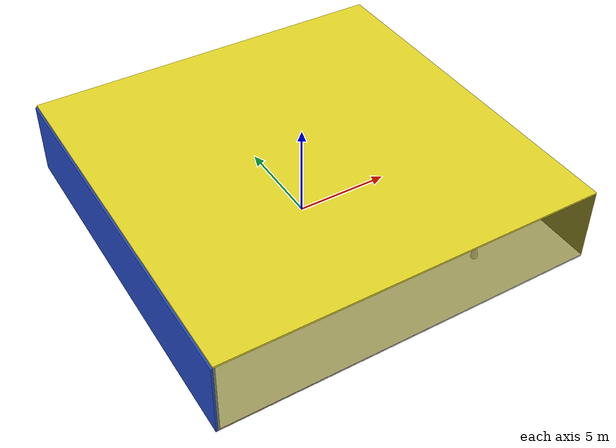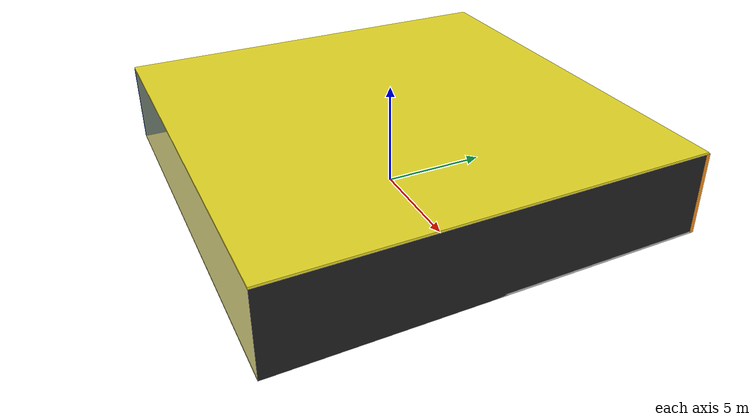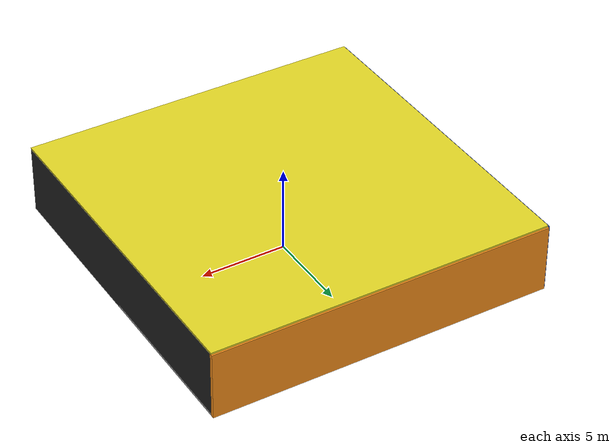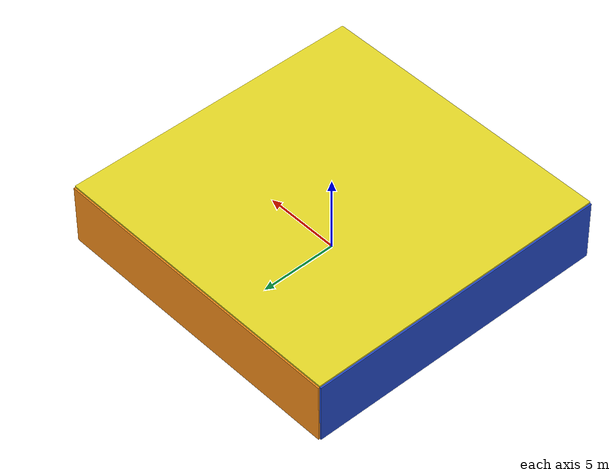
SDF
<sdf version="1.4">
 <world name="default">
  <physics type="ode">
   <max_step_size>0.001</max_step_size>
   <real_time_factor>1</real_time_factor>
   <real_time_update_rate>1000</real_time_update_rate>
   <gravity>0 0 -9.8</gravity>
  </physics>
  <scene><ambient>0.4 0.4 0.4 1</ambient><background>0.7 0.7 0.7 1</background><shadows>1</shadows></scene>
  <model name="Surrounding">
   <static>1</static>
   <link name="Ceiling">
    <collision name="Ceiling_Collision"><geometry><box><size>20 20 0.1</size></box></geometry></collision>
    <visual name="Ceiling_Visual">
     <geometry><box><size>20 20 0.1</size></box></geometry>
     <material>
      <script><uri>file://media/materials/scripts/gazebo.material</uri><name>Gazebo/Yellow</name></script>
     </material>
    </visual>
    <pose>0 0 4.05 0 0 0</pose>
   </link>
   <link name="Wall_South">
    <collision name="Wall_South_Collision">
     <geometry><box><size>20 0 4</size></box></geometry>
     <pose>0 0 2 0 -0 0</pose>
    </collision>
    <visual name="Wall_South_Visual">
     <pose>0 0 2 0 -0 0</pose>
     <geometry><box><size>20 0 4</size></box></geometry>
     <material>
      <script>
       <uri>file://media/materials/scripts/gazebo.material</uri>
       <name>Gazebo/YellowTransparent</name>
      </script>
     </material>
    </visual>
    <velocity_decay><linear>0</linear><angular>0</angular></velocity_decay>
    <pose>0 -10 0 0 -0 0</pose>
   </link>
   <link name="Wall_East">
    <collision name="Wall_21_Collision">
     <geometry><box><size>20 0 4</size></box></geometry>
     <pose>0 0 2 0 -0 0</pose>
    </collision>
    <visual name="Wall_21_Visual">
     <pose>0 0 2 0 -0 0</pose>
     <geometry><box><size>20 0 4</size></box></geometry>
     <material>
      <script><uri>file://media/materials/scripts/gazebo.material</uri><name>Gazebo/Black</name></script>
     </material>
    </visual>
    <velocity_decay><linear>0</linear><angular>0</angular></velocity_decay>
    <pose>10 0 0 0 -0 1.5708</pose>
   </link>
   <link name="Wall_North">
    <collision name="Wall_22_Collision">
     <geometry><box><size>20 0.2 4</size></box></geometry>
     <pose>0 0 2 0 -0 0</pose>
    </collision>
    <visual name="Wall_22_Visual">
     <pose>0 0 2 0 -0 0</pose>
     <geometry><box><size>20 0.2 4</size></box></geometry>
     <material>
      <script><uri>file://media/materials/scripts/gazebo.material</uri><name>Gazebo/Orange</name></script>
     </material>
    </visual>
    <velocity_decay><linear>0</linear><angular>0</angular></velocity_decay>
    <pose>0 10 0 0 -0 0</pose>
   </link>
   <link name="Wall_West">
    <collision name="Wall_23_Collision">
     <geometry><box><size>20 0.2 4</size></box></geometry>
     <pose>0 0 2 0 -0 0</pose>
    </collision>
    <visual name="Wall_23_Visual">
     <pose>0 0 2 0 -0 0</pose>
     <geometry><box><size>20 0.2 4</size></box></geometry>
     <material>
      <script><uri>file://media/materials/scripts/gazebo.material</uri><name>Gazebo/Blue</name></script>
     </material>
    </visual>
    <velocity_decay><linear>0</linear><angular>0</angular></velocity_decay>
    <pose>-10 0 0 0 0 -1.5708</pose>
   </link>
   <link name="Ground_link">
    <collision name="collision">
     <pose>0 0 .05 0 -0 0</pose>
     <geometry><box><size>20 20 0.1</size></box></geometry>
    </collision>
    <visual name="visual">
     <pose>0 0 .05 0 -0 0</pose>
     <geometry><box><size>20 20 0.1</size></box></geometry>
     <material>
      <script><uri>file://media/materials/scripts/gazebo.material</uri><name>Gazebo/CloudySky</name></script>
     </material>
    </visual>
   </link>
   <static>1</static>
  </model>
  <spherical_coordinates>
   <surface_model>EARTH_WGS84</surface_model>
   <latitude_deg>0</latitude_deg>
   <longitude_deg>0</longitude_deg>
   <elevation>0</elevation>
   <heading_deg>0</heading_deg>
  </spherical_coordinates>
  <light name="lightball_0" type="diffuse">
   <diffuse>0.8 0.8 0.8 1</diffuse>
   <specular>0.2 0.2 0.2 1</specular>
   <attenuation>
    <range>100</range>
    <constant>0.7</constant>
    <linear>0.01</linear>
    <quadratic>0.001</quadratic>
   </attenuation>
   <direction>-0.5 0.1 -0.9</direction>
   <pose>-9.40176001131 -9.85163026602 3.79581729675 0 0 0</pose>
  </light>
  <light name="lightball_1" type="diffuse">
   <diffuse>0.8 0.8 0.8 1</diffuse>
   <specular>0.2 0.2 0.2 1</specular>
   <attenuation>
    <range>100</range>
    <constant>0.7</constant>
    <linear>0.01</linear>
    <quadratic>0.001</quadratic>
   </attenuation>
   <direction>-0.5 0.1 -0.9</direction>
   <pose>1.47485473504 5.02748486358 2.66639960618 0 0 0</pose>
  </light>
  <light name="lightball_2" type="diffuse">
   <diffuse>0.8 0.8 0.8 1</diffuse>
   <specular>0.2 0.2 0.2 1</specular>
   <attenuation>
    <range>100</range>
    <constant>0.7</constant>
    <linear>0.01</linear>
    <quadratic>0.001</quadratic>
   </attenuation>
   <direction>-0.5 0.1 -0.9</direction>
   <pose>-7.94621731986 0.849569939768 1.35959333486 0 0 0</pose>
  </light>
  <include>
   <uri>model://robocup_3Dsim_goal</uri>
   <pose>-7.68190452014 2.62353596816 0 0 0 2.93292164915</pose>
  </include>
  <include>
   <uri>model://construction_cone</uri>
   <pose>5.39064581639 -7.40971342897 0 0 0 0.752542683787</pose>
  </include>
  <include>
   <uri>model://textured_shapes</uri>
   <pose>5.02224718172 6.4157053973 0 0 0 1.65376004648</pose>
  </include>
 </world>
</sdf>

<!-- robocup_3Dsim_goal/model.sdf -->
<sdf version="1.5">
  <model name="robocup_3d_goal">
    <static>true</static>
    <link name="left_post">
      <pose>0 1.05 0.45 0 0 0</pose>
      <collision name="collision">
        <geometry>
          <cylinder>
            <radius>0.05</radius>
            <length>0.9</length>
          </cylinder>
        </geometry>
      </collision>
      <visual name="visual">
        <geometry>
          <cylinder>
            <radius>0.05</radius>
            <length>0.9</length>
          </cylinder>
        </geometry>
        <material>
          <script>
            <uri>file://media/materials/scripts/gazebo.material</uri>
            <name>Gazebo/ZincYellow</name>
          </script>
        </material>
      </visual>
    </link>
    <link name="left_support_horiz_lower">
      <pose>0.30 1.05 0.01 0 0 0</pose>
      <collision name="collision">
        <geometry>
          <box>
            <size>0.50 0.02 0.02</size>
          </box>
        </geometry>
      </collision>
      <visual name="visual">
        <geometry>
          <box>
            <size>0.50 0.02 0.02</size>
          </box>
        </geometry>
        <material>
          <script>
            <uri>file://media/materials/scripts/gazebo.material</uri>
            <name>Gazebo/White</name>
          </script>
        </material>
      </visual>
    </link>
    <link name="left_support_horiz_upper">
      <pose>0.30 1.05 0.79 0 0 0</pose>
      <collision name="collision">
        <geometry>
          <box>
            <size>0.50 0.02 0.02</size>
          </box>
        </geometry>
      </collision>
      <visual name="visual">
        <geometry>
          <box>
            <size>0.50 0.02 0.02</size>
          </box>
        </geometry>
        <material>
          <script>
            <uri>file://media/materials/scripts/gazebo.material</uri>
            <name>Gazebo/White</name>
          </script>
        </material>
      </visual>
    </link>
    <link name="left_support_vertical">
      <pose>0.56 1.05 0.4 0 1.5708 0</pose>
      <collision name="collision">
        <geometry>
          <box>
            <size>0.80 0.02 0.02</size>
          </box>
        </geometry>
      </collision>
      <visual name="visual">
        <geometry>
          <box>
            <size>0.80 0.02 0.02</size>
          </box>
        </geometry>
        <material>
          <script>
            <uri>file://media/materials/scripts/gazebo.material</uri>
            <name>Gazebo/White</name>
          </script>
        </material>
      </visual>
    </link>
    <link name="right_support_horiz_lower">
      <pose>0.30 -1.05 0.01 0 0 0</pose>
      <collision name="collision">
        <geometry>
          <box>
            <size>0.50 0.02 0.02</size>
          </box>
        </geometry>
      </collision>
      <visual name="visual">
        <geometry>
          <box>
            <size>0.50 0.02 0.02</size>
          </box>
        </geometry>
        <material>
          <script>
            <uri>file://media/materials/scripts/gazebo.material</uri>
            <name>Gazebo/White</name>
          </script>
        </material>
      </visual>
    </link>
    <link name="right_support_horiz_upper">
      <pose>0.30 -1.05 0.79 0 0 0</pose>
      <collision name="collision">
        <geometry>
          <box>
            <size>0.50 0.02 0.02</size>
          </box>
        </geometry>
      </collision>
      <visual name="visual">
        <geometry>
          <box>
            <size>0.50 0.02 0.02</size>
          </box>
        </geometry>
        <material>
          <script>
            <uri>file://media/materials/scripts/gazebo.material</uri>
            <name>Gazebo/White</name>
          </script>
        </material>
      </visual>
    </link>
    <link name="right_support_vertical">
      <pose>0.56 -1.05 0.4 0 1.5708 0</pose>
      <collision name="collision">
        <geometry>
          <box>
            <size>0.80 0.02 0.02</size>
          </box>
        </geometry>
      </collision>
      <visual name="visual">
        <geometry>
          <box>
            <size>0.80 0.02 0.02</size>
          </box>
        </geometry>
        <material>
          <script>
            <uri>file://media/materials/scripts/gazebo.material</uri>
            <name>Gazebo/White</name>
          </script>
        </material>
      </visual>
    </link>
    <link name="center_support_horiz_lower">
      <pose>0.56 0 0.01 0 1.5708 0</pose>
      <collision name="collision">
        <geometry>
          <box>
            <size>0.02 2.08 0.02</size>
          </box>
        </geometry>
      </collision>
      <visual name="visual">
        <geometry>
          <box>
            <size>0.02 2.08 0.02</size>
          </box>
        </geometry>
        <material>
          <script>
            <uri>file://media/materials/scripts/gazebo.material</uri>
            <name>Gazebo/White</name>
          </script>
        </material>
      </visual>
    </link>
    <link name="center_support_horiz_upper">
      <pose>0.56 0 0.79 0 1.5708 0</pose>
      <collision name="collision">
        <geometry>
          <box>
            <size>0.02 2.08 0.02</size>
          </box>
        </geometry>
      </collision>
      <visual name="visual">
        <geometry>
          <box>
            <size>0.02 2.08 0.02</size>
          </box>
        </geometry>
        <material>
          <script>
            <uri>file://media/materials/scripts/gazebo.material</uri>
            <name>Gazebo/White</name>
          </script>
        </material>
      </visual>
    </link>
    <link name="right_post">
      <pose>0 -1.05 0.45 0 0 0</pose>
      <collision name="collision">
        <geometry>
          <cylinder>
            <radius>0.05</radius>
            <length>0.9</length>
          </cylinder>
        </geometry>
      </collision>
      <visual name="visual">
        <geometry>
          <cylinder>
            <radius>0.05</radius>
            <length>0.9</length>
          </cylinder>
        </geometry>
        <material>
          <script>
            <uri>file://media/materials/scripts/gazebo.material</uri>
            <name>Gazebo/ZincYellow</name>
          </script>
        </material>
      </visual>
    </link>
    <link name="crossbar">
      <pose>0 0 0.85 1.57 1.57 0</pose>
      <collision name="collision">
        <geometry>
          <cylinder>
            <radius>0.05</radius>
            <length>2.0</length>
          </cylinder>
        </geometry>
      </collision>
      <visual name="visual">
        <geometry>
          <cylinder>
            <radius>0.05</radius>
            <length>2.0</length>
          </cylinder>
        </geometry>
        <material>
          <script>
            <uri>file://media/materials/scripts/gazebo.material</uri>
            <name>Gazebo/ZincYellow</name>
          </script>
        </material>
      </visual>
    </link>
    <link name="center_net">
      <pose>0.56 0 0.40 0 0 0</pose>
      <collision name="collision">
        <geometry>
          <box>
            <size>0.01 2.1 0.80</size>
          </box>
        </geometry>
      </collision>
      <visual name="visual">
        <geometry>
          <box>
            <size>0.01 2.1 0.80</size>
          </box>
        </geometry>
        <material>
          <script>
            <uri>model://../model_source/models/robocup09_spl_field/materials/scripts/</uri>
            <uri>model://../model_source/models/robocup09_spl_field/materials/textures/</uri>
            <name>RoboCup/Net</name>
          </script>
        </material>
      </visual>
    </link>
    <link name="left_net">
      <pose>0.30 1.05 0.40 0 0 0</pose>
      <collision name="collision">
        <geometry>
          <box>
            <size>0.50 0.01 0.76</size>
          </box>
        </geometry>
      </collision>
      <visual name="visual">
        <geometry>
          <box>
            <size>0.50 0.01 0.76</size>
          </box>
        </geometry>
        <material>
          <script>
            <uri>model://../model_source/models/robocup09_spl_field/materials/scripts/</uri>
            <uri>model://../model_source/models/robocup09_spl_field/materials/textures/</uri>
            <name>RoboCup/Net</name>
          </script>
        </material>
      </visual>
    </link>
    <link name="right_net">
      <pose>0.30 -1.05 0.40 0 0 0</pose>
      <collision name="collision">
        <geometry>
          <box>
            <size>0.50 0.01 0.76</size>
          </box>
        </geometry>
      </collision>
      <visual name="visual">
        <geometry>
          <box>
            <size>0.50 0.01 0.76</size>
          </box>
        </geometry>
        <material>
          <script>
            <uri>model://../model_source/models/robocup09_spl_field/materials/scripts/</uri>
            <uri>model://../model_source/models/robocup09_spl_field/materials/textures/</uri>
            <name>RoboCup/Net</name>
          </script>
        </material>
      </visual>
    </link>
  </model>
</sdf>

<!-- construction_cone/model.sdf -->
<sdf version="1.5">
  <model name="Construction Cone">
    <link name="link">
      <collision name="collision">
        <geometry>
          <mesh>
            <scale>10 10 10</scale>
            <uri>file://isr-testbed/construction_cone/meshes/construction_cone.dae</uri>
          </mesh>
        </geometry>
      </collision>
      <visual name="visual">
        <geometry>
          <mesh>
            <scale>10 10 10</scale>
            <uri>file://isr-testbed/construction_cone/meshes/construction_cone.dae</uri>
          </mesh>
        </geometry>
      </visual>
    </link>
  </model>
</sdf>

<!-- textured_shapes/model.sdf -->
<sdf version="1.6">
  <model name="textured_shapes">
    <pose>0 0 0.5 0 0 0</pose>
    <link name="box">
      <pose>0 -1.5 0 0 0 0</pose>
      <collision name="collision">
        <geometry>
          <box>
            <size>1 1 1</size>
          </box>
        </geometry>
      </collision>
      <visual name="visual">
        <geometry>
          <box>
            <size>1 1 1</size>
          </box>
        </geometry>
        <material>
          <script>
            <uri>model://../model_source/models/textured_shapes/materials/scripts</uri>
            <uri>model://../model_source/models/textured_shapes/materials/textures</uri>
            <name>TexturedShape/Squares</name>
          </script>
        </material>
      </visual>
    </link>
    <link name="sphere">
      <collision name="collision">
        <geometry>
          <sphere>
            <radius>0.5</radius>
          </sphere>
        </geometry>
      </collision>
      <visual name="visual">
        <geometry>
          <sphere>
            <radius>0.5</radius>
          </sphere>
        </geometry>
        <material>
          <script>
            <uri>model://../model_source/models/textured_shapes/materials/scripts</uri>
            <uri>model://../model_source/models/textured_shapes/materials/textures</uri>
            <name>TexturedShape/Squares</name>
          </script>
        </material>
      </visual>
    </link>
    <link name="cylinder">
      <pose>0 1.5 0 0 0 0</pose>
      <collision name="collision">
        <geometry>
          <cylinder>
            <radius>0.5</radius>
            <length>1</length>
          </cylinder>
        </geometry>
      </collision>
      <visual name="visual">
        <geometry>
          <cylinder>
            <radius>0.5</radius>
            <length>1</length>
          </cylinder>
        </geometry>
        <material>
          <script>
            <uri>model://../model_source/models/textured_shapes/materials/scripts</uri>
            <uri>model://../model_source/models/textured_shapes/materials/textures</uri>
            <name>TexturedShape/Squares</name>
          </script>
        </material>
      </visual>
    </link>
  </model>
</sdf>
